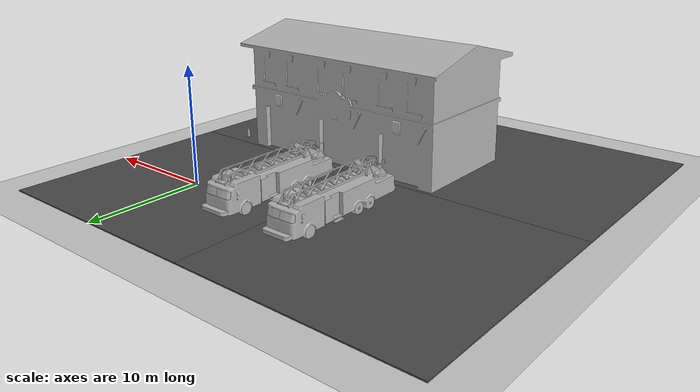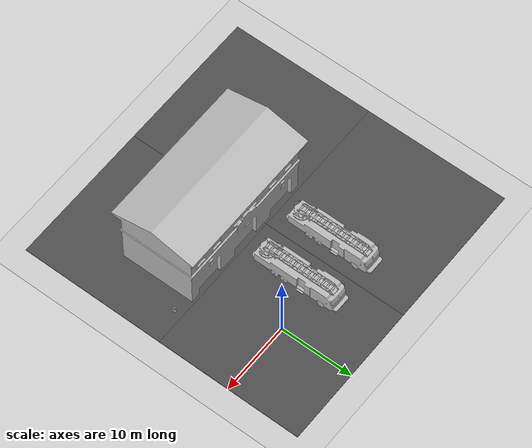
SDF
<sdf version="1.7">
 <world name="default">
  <light name="sun" type="directional">
   <pose>0 0 10 0 -0 0</pose>
   <diffuse>0.8 0.8 0.8 1</diffuse>
   <specular>0.2 0.2 0.2 1</specular>
   <attenuation>
    <range>1000</range>
    <constant>0.9</constant>
    <linear>0.01</linear>
    <quadratic>0.001</quadratic>
   </attenuation>
   <direction>-0.5 0.1 -0.9</direction>
   <spot><inner_angle>0</inner_angle><outer_angle>0</outer_angle><falloff>0</falloff></spot>
  </light>
  <model name="ground_plane">
   <static>1</static>
   <link name="link">
    <collision name="collision">
     <geometry><plane><normal>0 0 1</normal><size>100 100</size></plane></geometry>
     <surface><friction><ode><mu>100</mu><mu2>50</mu2></ode></friction></surface>
    </collision>
    <visual name="visual">
     <cast_shadows>0</cast_shadows>
     <geometry><plane><normal>0 0 1</normal><size>100 100</size></plane></geometry>
     <material>
      <script><uri>file://media/materials/scripts/gazebo.material</uri><name>Gazebo/Grey</name></script>
     </material>
    </visual>
   </link>
  </model>
  <gravity>0 0 -9.8</gravity>
  <magnetic_field>6e-06 2.3e-05 -4.2e-05</magnetic_field>
  <atmosphere type="adiabatic"/>
  <physics type="ode">
   <max_step_size>0.001</max_step_size>
   <real_time_factor>1</real_time_factor>
   <real_time_update_rate>1000</real_time_update_rate>
  </physics>
  <scene><ambient>0.4 0.4 0.4 1</ambient><background>0.7 0.7 0.7 1</background><shadows>1</shadows></scene>
  <spherical_coordinates>
   <surface_model>EARTH_WGS84</surface_model>
   <latitude_deg>0</latitude_deg>
   <longitude_deg>0</longitude_deg>
   <elevation>0</elevation>
   <heading_deg>0</heading_deg>
  </spherical_coordinates>
  <model name="asphalt_plane">
   <static>1</static>
   <link name="link">
    <collision name="collision"><geometry><box><size>20 20 0.1</size></box></geometry></collision>
    <visual name="visual">
     <cast_shadows>0</cast_shadows>
     <geometry><box><size>20 20 0.1</size></box></geometry>
     <material>
      <script>
       <uri>model://asphalt_plane/materials/scripts</uri>
       <uri>model://asphalt_plane/materials/textures</uri>
       <name>vrc/asphalt</name>
      </script>
     </material>
    </visual>
   </link>
  </model>
  <model name="asphalt_plane_0">
   <static>1</static>
   <link name="link">
    <collision name="collision"><geometry><box><size>20 20 0.1</size></box></geometry></collision>
    <visual name="visual">
     <cast_shadows>0</cast_shadows>
     <geometry><box><size>20 20 0.1</size></box></geometry>
     <material>
      <script>
       <uri>model://asphalt_plane/materials/scripts</uri>
       <uri>model://asphalt_plane/materials/textures</uri>
       <name>vrc/asphalt</name>
      </script>
     </material>
    </visual>
   </link>
   <pose>0 -20 0 0 -0 0</pose>
  </model>
  <model name="asphalt_plane_1">
   <static>1</static>
   <link name="link">
    <collision name="collision"><geometry><box><size>20 20 0.1</size></box></geometry></collision>
    <visual name="visual">
     <cast_shadows>0</cast_shadows>
     <geometry><box><size>20 20 0.1</size></box></geometry>
     <material>
      <script>
       <uri>model://asphalt_plane/materials/scripts</uri>
       <uri>model://asphalt_plane/materials/textures</uri>
       <name>vrc/asphalt</name>
      </script>
     </material>
    </visual>
   </link>
   <pose>-20 -20 0 0 -0 0</pose>
  </model>
  <model name="asphalt_plane_2">
   <static>1</static>
   <link name="link">
    <collision name="collision"><geometry><box><size>20 20 0.1</size></box></geometry></collision>
    <visual name="visual">
     <cast_shadows>0</cast_shadows>
     <geometry><box><size>20 20 0.1</size></box></geometry>
     <material>
      <script>
       <uri>model://asphalt_plane/materials/scripts</uri>
       <uri>model://asphalt_plane/materials/textures</uri>
       <name>vrc/asphalt</name>
      </script>
     </material>
    </visual>
   </link>
   <pose>-20 0 0 0 -0 0</pose>
  </model>
  <model name="fire_station">
   <static>1</static>
   <link name="link">
    <collision name="main">
     <pose>0 -0.135 5 0 -0 0</pose>
     <geometry><box><size>19.98 9.68 10</size></box></geometry>
    </collision>
    <collision name="front_top">
     <pose>0 4.957 7 0 -0 0</pose>
     <geometry><box><size>20 0.515 6</size></box></geometry>
    </collision>
    <collision name="column_0">
     <pose>9.333 4.957 2 0 -0 0</pose>
     <geometry><box><size>1.315 0.515 4</size></box></geometry>
    </collision>
    <collision name="column_1">
     <pose>3.33 4.957 2 0 -0 0</pose>
     <geometry><box><size>2.63 0.515 4</size></box></geometry>
    </collision>
    <collision name="column_2">
     <pose>-3.33 4.957 2 0 -0 0</pose>
     <geometry><box><size>2.63 0.515 4</size></box></geometry>
    </collision>
    <collision name="column_3">
     <pose>-9.333 4.957 2 0 -0 0</pose>
     <geometry><box><size>1.315 0.515 4</size></box></geometry>
    </collision>
    <collision name="roof_back">
     <pose>0 -2.742 10.467 0.25 -0 0</pose>
     <geometry><box><size>21.47 6.12 0.28</size></box></geometry>
    </collision>
    <collision name="roof_front">
     <pose>0 3.12 10.467 -0.25 0 0</pose>
     <geometry><box><size>21.47 6.12 0.28</size></box></geometry>
    </collision>
    <collision name="roof_base">
     <pose>0 0.188 9.705 0 -0 0</pose>
     <geometry><box><size>21.47 11.86 0.28</size></box></geometry>
    </collision>
    <collision name="roof_filling_0">
     <pose>0 0.188 9.985 0 -0 0</pose>
     <geometry><box><size>21.47 9.53 0.28</size></box></geometry>
    </collision>
    <collision name="roof_filling_1">
     <pose>0 0.188 10.14 0 -0 0</pose>
     <geometry><box><size>21.47 8.41 0.28</size></box></geometry>
    </collision>
    <collision name="roof_filling_2">
     <pose>0 0.188 10.42 0 -0 0</pose>
     <geometry><box><size>21.47 6.25 0.28</size></box></geometry>
    </collision>
    <collision name="roof_filling_3">
     <pose>0 0.188 10.7 0 -0 0</pose>
     <geometry><box><size>21.47 4.05 0.28</size></box></geometry>
    </collision>
    <collision name="roof_filling_4">
     <pose>0 0.188 10.98 0 -0 0</pose>
     <geometry><box><size>21.47 1.83 0.28</size></box></geometry>
    </collision>
    <visual name="visual">
     <geometry><mesh><uri>model://fire_station/meshes/fire_station.dae</uri></mesh></geometry>
    </visual>
   </link>
   <pose>-6.418 -15.5286 0 0 -0 0</pose>
  </model>
  <model name="fire_truck">
   <static>1</static>
   <link name="link">
    <collision name="collision">
     <geometry>
      <mesh><scale>0.1 0.1 0.1</scale><uri>model://fire_truck/meshes/fire_truck.obj</uri></mesh>
     </geometry>
    </collision>
    <visual name="visual">
     <geometry>
      <mesh><scale>0.1 0.1 0.1</scale><uri>model://fire_truck/meshes/fire_truck.obj</uri></mesh>
     </geometry>
    </visual>
   </link>
   <pose>-6.5 -2 0 0 -0 0</pose>
  </model>
  <model name="fire_truck_0">
   <static>1</static>
   <link name="link">
    <collision name="collision">
     <geometry>
      <mesh><scale>0.1 0.1 0.1</scale><uri>model://fire_truck/meshes/fire_truck.obj</uri></mesh>
     </geometry>
    </collision>
    <visual name="visual">
     <geometry>
      <mesh><scale>0.1 0.1 0.1</scale><uri>model://fire_truck/meshes/fire_truck.obj</uri></mesh>
     </geometry>
    </visual>
   </link>
   <pose>-13 -2 0 0 -0 0</pose>
  </model>
  <model name="fire_hydrant">
   <static>1</static>
   <link name="link">
    <collision name="collision">
     <geometry><mesh><uri>model://fire_hydrant/meshes/fire_hydrant.dae</uri></mesh></geometry>
    </collision>
    <visual name="visual">
     <geometry><mesh><uri>model://fire_hydrant/meshes/fire_hydrant.dae</uri></mesh></geometry>
    </visual>
   </link>
   <pose>5.7701 -11.1673 0 0 -0 0</pose>
  </model>
 </world>
</sdf>
